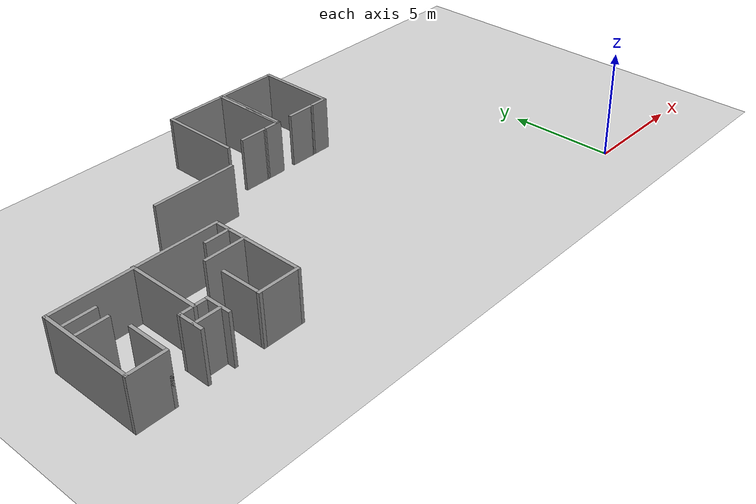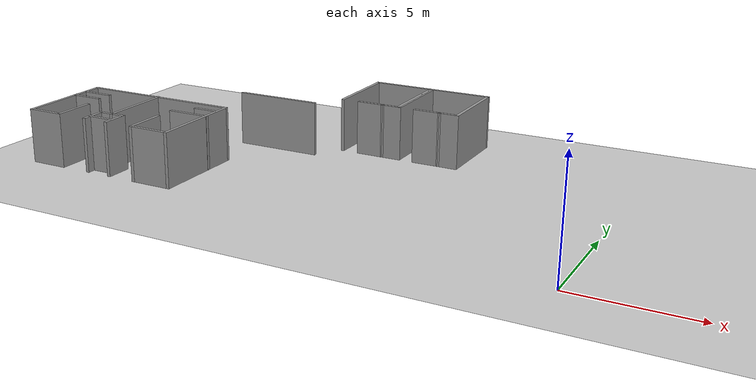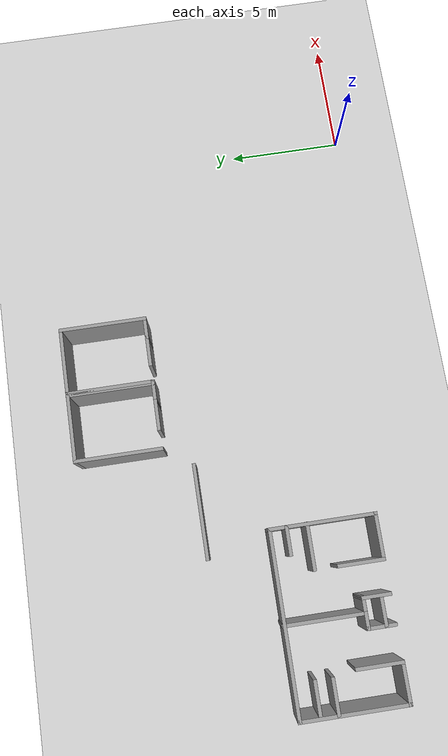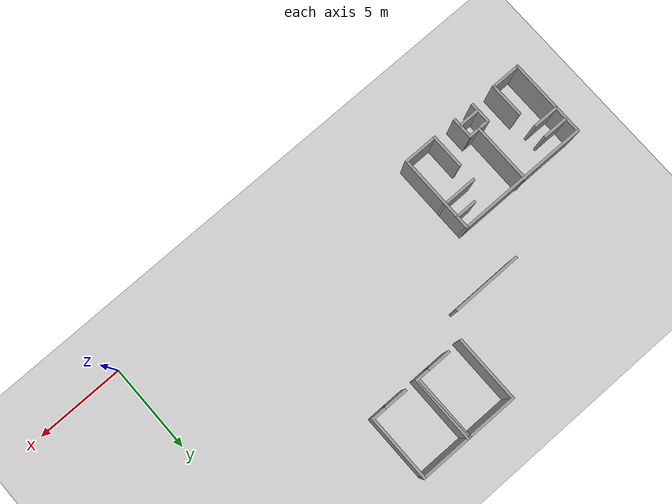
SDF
<sdf version="1.6">
 <world name="default">
  <model name="ground_plane">
   <static>1</static>
   <link name="link">
    <collision name="collision">
     <geometry><plane><normal>0 0 1</normal><size>100 100</size></plane></geometry>
     <surface><friction><ode><mu>100</mu><mu2>50</mu2></ode></friction></surface>
    </collision>
    <visual name="visual">
     <cast_shadows>0</cast_shadows>
     <geometry><plane><normal>0 0 1</normal><size>100 100</size></plane></geometry>
     <material>
      <script><uri>file://media/materials/scripts/gazebo.material</uri><name>Gazebo/Grey</name></script>
     </material>
    </visual>
   </link>
  </model>
  <model name="201/202">
   <pose>-21.3391 4.00533 0 0 -0 0</pose>
   <link name="Wall_10">
    <collision name="Wall_10_Collision">
     <geometry><box><size>7.62002 0.15 2.5</size></box></geometry>
     <pose>0 0 1.25 0 -0 0</pose>
    </collision>
    <visual name="Wall_10_Visual">
     <pose>0 0 1.25 0 -0 0</pose>
     <geometry><box><size>7.62002 0.15 2.5</size></box></geometry>
     <material>
      <script><uri>file://media/materials/scripts/gazebo.material</uri><name>Gazebo/Grey</name></script>
      <ambient>1 1 1 1</ambient>
     </material>
     <meta><layer>0</layer></meta>
    </visual>
    <pose>-0.004655 2.1906 0 0 -0 3.14159</pose>
   </link>
   <link name="Wall_11">
    <collision name="Wall_11_Collision">
     <geometry><box><size>4.572 0.15 2.5</size></box></geometry>
     <pose>0 0 1.25 0 -0 0</pose>
    </collision>
    <visual name="Wall_11_Visual">
     <pose>0 0 1.25 0 -0 0</pose>
     <geometry><box><size>4.572 0.15 2.5</size></box></geometry>
     <material>
      <script><uri>file://media/materials/scripts/gazebo.material</uri><name>Gazebo/Grey</name></script>
      <ambient>1 1 1 1</ambient>
     </material>
     <meta><layer>0</layer></meta>
    </visual>
    <pose>-3.73965 -0.020398 0 0 -0 -1.5708</pose>
   </link>
   <link name="Wall_13">
    <collision name="Wall_13_Collision">
     <geometry><box><size>2 0.15 2.5</size></box></geometry>
     <pose>0 0 1.25 0 -0 0</pose>
    </collision>
    <visual name="Wall_13_Visual">
     <pose>0 0 1.25 0 -0 0</pose>
     <geometry><box><size>2 0.15 2.5</size></box></geometry>
     <material>
      <script><uri>file://media/materials/scripts/gazebo.material</uri><name>Gazebo/Grey</name></script>
      <ambient>1 1 1 1</ambient>
     </material>
     <meta><layer>0</layer></meta>
    </visual>
    <pose>2.80535 -2.23095 0 0 -0 3.14159</pose>
   </link>
   <link name="Wall_14">
    <collision name="Wall_14_Collision">
     <geometry><box><size>2 0.15 2.5</size></box></geometry>
     <pose>0 0 1.25 0 -0 0</pose>
    </collision>
    <visual name="Wall_14_Visual">
     <pose>0 0 1.25 0 -0 0</pose>
     <geometry><box><size>2 0.15 2.5</size></box></geometry>
     <material>
      <script><uri>file://media/materials/scripts/gazebo.material</uri><name>Gazebo/Grey</name></script>
      <ambient>1 1 1 1</ambient>
     </material>
     <meta><layer>0</layer></meta>
    </visual>
    <pose>1.88035 -1.30595 0 0 -0 1.5708</pose>
   </link>
   <link name="Wall_16">
    <collision name="Wall_16_Collision">
     <geometry><box><size>3.5 0.15 2.5</size></box></geometry>
     <pose>0 0 1.25 0 -0 0</pose>
    </collision>
    <visual name="Wall_16_Visual">
     <pose>0 0 1.25 0 -0 0</pose>
     <geometry><box><size>3.5 0.15 2.5</size></box></geometry>
     <material>
      <script><uri>file://media/materials/scripts/gazebo.material</uri><name>Gazebo/Grey</name></script>
      <ambient>1 1 1 1</ambient>
     </material>
     <meta><layer>0</layer></meta>
    </visual>
    <pose>-0.091763 0.556398 0 0 -0 -1.5708</pose>
   </link>
   <link name="Wall_17">
    <collision name="Wall_17_Collision">
     <geometry><box><size>0.75 0.15 2.5</size></box></geometry>
     <pose>0 0 1.25 0 -0 0</pose>
    </collision>
    <visual name="Wall_17_Visual">
     <pose>0 0 1.25 0 -0 0</pose>
     <geometry><box><size>0.75 0.15 2.5</size></box></geometry>
     <material>
      <script><uri>file://media/materials/scripts/gazebo.material</uri><name>Gazebo/Grey</name></script>
      <ambient>1 1 1 1</ambient>
     </material>
     <meta><layer>0</layer></meta>
    </visual>
    <pose>0.208236 -1.1186 0 0 -0 0</pose>
   </link>
   <link name="Wall_18">
    <collision name="Wall_18_Collision">
     <geometry><box><size>1.25 0.15 2.5</size></box></geometry>
     <pose>0 0 1.25 0 -0 0</pose>
    </collision>
    <visual name="Wall_18_Visual">
     <pose>0 0 1.25 0 -0 0</pose>
     <geometry><box><size>1.25 0.15 2.5</size></box></geometry>
     <material>
      <script><uri>file://media/materials/scripts/gazebo.material</uri><name>Gazebo/Grey</name></script>
      <ambient>1 1 1 1</ambient>
     </material>
     <meta><layer>0</layer></meta>
    </visual>
    <pose>0.508237 -1.6686 0 0 -0 -1.5708</pose>
   </link>
   <link name="Wall_20">
    <collision name="Wall_20_Collision">
     <geometry><box><size>0.75 0.15 2.5</size></box></geometry>
     <pose>0 0 1.25 0 -0 0</pose>
    </collision>
    <visual name="Wall_20_Visual">
     <pose>0 0 1.25 0 -0 0</pose>
     <geometry><box><size>0.75 0.15 2.5</size></box></geometry>
     <material>
      <script><uri>file://media/materials/scripts/gazebo.material</uri><name>Gazebo/Grey</name></script>
      <ambient>1 1 1 1</ambient>
     </material>
     <meta><layer>0</layer></meta>
    </visual>
    <pose>-0.391763 -1.1186 0 0 -0 3.14159</pose>
   </link>
   <link name="Wall_21">
    <collision name="Wall_21_Collision">
     <geometry><box><size>1.25 0.15 2.5</size></box></geometry>
     <pose>0 0 1.25 0 -0 0</pose>
    </collision>
    <visual name="Wall_21_Visual">
     <pose>0 0 1.25 0 -0 0</pose>
     <geometry><box><size>1.25 0.15 2.5</size></box></geometry>
     <material>
      <script><uri>file://media/materials/scripts/gazebo.material</uri><name>Gazebo/Grey</name></script>
      <ambient>1 1 1 1</ambient>
     </material>
     <meta><layer>0</layer></meta>
    </visual>
    <pose>-0.691764 -1.6686 0 0 -0 -1.5708</pose>
   </link>
   <link name="Wall_23">
    <collision name="Wall_23_Collision">
     <geometry><box><size>1.75 0.15 2.5</size></box></geometry>
     <pose>0 0 1.25 0 -0 0</pose>
    </collision>
    <visual name="Wall_23_Visual">
     <pose>0 0 1.25 0 -0 0</pose>
     <geometry><box><size>1.75 0.15 2.5</size></box></geometry>
     <material>
      <script><uri>file://media/materials/scripts/gazebo.material</uri><name>Gazebo/Grey</name></script>
      <ambient>1 1 1 1</ambient>
     </material>
     <meta><layer>0</layer></meta>
    </visual>
    <pose>-2.93966 -2.2314 0 0 -0 0</pose>
   </link>
   <link name="Wall_24">
    <collision name="Wall_24_Collision">
     <geometry><box><size>2 0.15 2.5</size></box></geometry>
     <pose>0 0 1.25 0 -0 0</pose>
    </collision>
    <visual name="Wall_24_Visual">
     <pose>0 0 1.25 0 -0 0</pose>
     <geometry><box><size>2 0.15 2.5</size></box></geometry>
     <material>
      <script><uri>file://media/materials/scripts/gazebo.material</uri><name>Gazebo/Grey</name></script>
      <ambient>1 1 1 1</ambient>
     </material>
     <meta><layer>0</layer></meta>
    </visual>
    <pose>-2.13965 -1.3064 0 0 -0 1.5708</pose>
   </link>
   <link name="Wall_28">
    <collision name="Wall_28_Collision">
     <geometry><box><size>1.5 0.15 2.5</size></box></geometry>
     <pose>0 0 1.25 0 -0 0</pose>
    </collision>
    <visual name="Wall_28_Visual">
     <pose>0 0 1.25 0 -0 0</pose>
     <geometry><box><size>1.5 0.15 2.5</size></box></geometry>
     <material>
      <script><uri>file://media/materials/scripts/gazebo.material</uri><name>Gazebo/Grey</name></script>
      <ambient>1 1 1 1</ambient>
     </material>
     <meta><layer>0</layer></meta>
    </visual>
    <pose>-3.01876 1.34811 0 0 -0 0</pose>
   </link>
   <link name="Wall_30">
    <collision name="Wall_30_Collision">
     <geometry><box><size>1.5 0.15 2.5</size></box></geometry>
     <pose>0 0 1.25 0 -0 0</pose>
    </collision>
    <visual name="Wall_30_Visual">
     <pose>0 0 1.25 0 -0 0</pose>
     <geometry><box><size>1.5 0.15 2.5</size></box></geometry>
     <material>
      <script><uri>file://media/materials/scripts/gazebo.material</uri><name>Gazebo/Grey</name></script>
      <ambient>1 1 1 1</ambient>
     </material>
     <meta><layer>0</layer></meta>
    </visual>
    <pose>-3.03023 0.625411 0 0 -0 0</pose>
   </link>
   <link name="Wall_32">
    <collision name="Wall_32_Collision">
     <geometry><box><size>2 0.15 2.5</size></box></geometry>
     <pose>0 0 1.25 0 -0 0</pose>
    </collision>
    <visual name="Wall_32_Visual">
     <pose>0 0 1.25 0 -0 0</pose>
     <geometry><box><size>2 0.15 2.5</size></box></geometry>
     <material>
      <script><uri>file://media/materials/scripts/gazebo.material</uri><name>Gazebo/Grey</name></script>
      <ambient>1 1 1 1</ambient>
     </material>
     <meta><layer>0</layer></meta>
    </visual>
    <pose>2.81466 0.625411 0 0 -0 3.14159</pose>
   </link>
   <link name="Wall_34">
    <collision name="Wall_34_Collision">
     <geometry><box><size>1.25 0.15 2.5</size></box></geometry>
     <pose>0 0 1.25 0 -0 0</pose>
    </collision>
    <visual name="Wall_34_Visual">
     <pose>0 0 1.25 0 -0 0</pose>
     <geometry><box><size>1.25 0.15 2.5</size></box></geometry>
     <material>
      <script><uri>file://media/materials/scripts/gazebo.material</uri><name>Gazebo/Grey</name></script>
      <ambient>1 1 1 1</ambient>
     </material>
     <meta><layer>0</layer></meta>
    </visual>
    <pose>3.16672 1.48576 0 0 -0 3.14159</pose>
   </link>
   <link name="Wall_36">
    <collision name="Wall_36_Collision">
     <geometry><box><size>1.25 0.15 2.5</size></box></geometry>
     <pose>0 0 1.25 0 -0 0</pose>
    </collision>
    <visual name="Wall_36_Visual">
     <pose>0 0 1.25 0 -0 0</pose>
     <geometry><box><size>1.25 0.15 2.5</size></box></geometry>
     <material>
      <script><uri>file://media/materials/scripts/gazebo.material</uri><name>Gazebo/Grey</name></script>
      <ambient>1 1 1 1</ambient>
     </material>
     <meta><layer>0</layer></meta>
    </visual>
    <pose>-0.138273 -1.8524 0 0 -0 0</pose>
   </link>
   <link name="Wall_9">
    <collision name="Wall_9_Collision">
     <geometry><box><size>4.572 0.15 2.5</size></box></geometry>
     <pose>0 0 1.25 0 -0 0</pose>
    </collision>
    <visual name="Wall_9_Visual">
     <pose>0 0 1.25 0 -0 0</pose>
     <geometry><box><size>4.572 0.15 2.5</size></box></geometry>
     <material>
      <script><uri>file://media/materials/scripts/gazebo.material</uri><name>Gazebo/Grey</name></script>
      <ambient>1 1 1 1</ambient>
     </material>
     <meta><layer>0</layer></meta>
    </visual>
    <pose>3.73035 -0.020175 0 0 -0 1.5708</pose>
   </link>
   <static>1</static>
  </model>
  <model name="313-325_12">
   <link name="Wall_16">
    <pose>-1.44915 7.1e-05 0 0 0 -1.57088</pose>
    <visual name="Wall_16_Visual">
     <pose>0 0 1.25 0 -0 0</pose>
     <geometry><box><size>3.81 0.15 2.5</size></box></geometry>
     <material>
      <script><uri>file://media/materials/scripts/gazebo.material</uri><name>Gazebo/Grey</name></script>
      <ambient>1 1 1 1</ambient>
      <shader type="pixel"/>
     </material>
     <meta><layer>0</layer></meta>
    </visual>
    <collision name="Wall_16_Collision">
     <pose>0 0 1.25 0 -0 0</pose>
     <geometry><box><size>3.81 0.15 2.5</size></box></geometry>
     <surface>
      <friction>
       <ode><mu>1</mu><mu2>1</mu2><fdir1>0 0 0</fdir1><slip1>0</slip1><slip2>0</slip2></ode>
       <torsional>
        <coefficient>1</coefficient>
        <patch_radius>0</patch_radius>
        <surface_radius>0</surface_radius>
        <use_patch_radius>1</use_patch_radius>
        <ode><slip>0</slip></ode>
       </torsional>
      </friction>
      <bounce><restitution_coefficient>0</restitution_coefficient><threshold>1e+06</threshold></bounce>
      <contact>
       <collide_without_contact>0</collide_without_contact>
       <collide_without_contact_bitmask>1</collide_without_contact_bitmask>
       <collide_bitmask>1</collide_bitmask>
       <ode>
        <soft_cfm>0</soft_cfm>
        <soft_erp>0.2</soft_erp>
        <kp>1e+13</kp>
        <kd>1</kd>
        <max_vel>0.01</max_vel>
        <min_depth>0</min_depth>
       </ode>
       <bullet>
        <split_impulse>1</split_impulse>
        <split_impulse_penetration_threshold>-0.01</split_impulse_penetration_threshold>
        <soft_cfm>0</soft_cfm>
        <soft_erp>0.2</soft_erp>
        <kp>1e+13</kp>
        <kd>1</kd>
       </bullet>
      </contact>
     </surface>
    </collision>
   </link>
   <link name="Wall_18">
    <pose>1.449 -6.1e-05 0 0 -0 1.5708</pose>
    <visual name="Wall_18_Visual">
     <pose>0 0 1.25 0 -0 0</pose>
     <geometry><box><size>3.80974 0.15 2.5</size></box></geometry>
     <material>
      <script><uri>file://media/materials/scripts/gazebo.material</uri><name>Gazebo/Grey</name></script>
      <ambient>1 1 1 1</ambient>
      <shader type="pixel"/>
     </material>
     <meta><layer>0</layer></meta>
    </visual>
    <collision name="Wall_18_Collision">
     <pose>0 0 1.25 0 -0 0</pose>
     <geometry><box><size>3.80974 0.15 2.5</size></box></geometry>
     <surface>
      <friction>
       <ode><mu>1</mu><mu2>1</mu2><fdir1>0 0 0</fdir1><slip1>0</slip1><slip2>0</slip2></ode>
       <torsional>
        <coefficient>1</coefficient>
        <patch_radius>0</patch_radius>
        <surface_radius>0</surface_radius>
        <use_patch_radius>1</use_patch_radius>
        <ode><slip>0</slip></ode>
       </torsional>
      </friction>
      <bounce><restitution_coefficient>0</restitution_coefficient><threshold>1e+06</threshold></bounce>
      <contact>
       <collide_without_contact>0</collide_without_contact>
       <collide_without_contact_bitmask>1</collide_without_contact_bitmask>
       <collide_bitmask>1</collide_bitmask>
       <ode>
        <soft_cfm>0</soft_cfm>
        <soft_erp>0.2</soft_erp>
        <kp>1e+13</kp>
        <kd>1</kd>
        <max_vel>0.01</max_vel>
        <min_depth>0</min_depth>
       </ode>
       <bullet>
        <split_impulse>1</split_impulse>
        <split_impulse_penetration_threshold>-0.01</split_impulse_penetration_threshold>
        <soft_cfm>0</soft_cfm>
        <soft_erp>0.2</soft_erp>
        <kp>1e+13</kp>
        <kd>1</kd>
       </bullet>
      </contact>
     </surface>
    </collision>
   </link>
   <link name="Wall_19">
    <pose>2e-06 1.82994 0 0 -0 3.14159</pose>
    <visual name="Wall_19_Visual">
     <pose>0 0 1.25 0 -0 0</pose>
     <geometry><box><size>3.04862 0.15 2.5</size></box></geometry>
     <material>
      <script><uri>file://media/materials/scripts/gazebo.material</uri><name>Gazebo/Grey</name></script>
      <ambient>1 1 1 1</ambient>
      <shader type="pixel"/>
     </material>
     <meta><layer>0</layer></meta>
    </visual>
    <collision name="Wall_19_Collision">
     <pose>0 0 1.25 0 -0 0</pose>
     <geometry><box><size>3.04862 0.15 2.5</size></box></geometry>
     <surface>
      <friction>
       <ode><mu>1</mu><mu2>1</mu2><fdir1>0 0 0</fdir1><slip1>0</slip1><slip2>0</slip2></ode>
       <torsional>
        <coefficient>1</coefficient>
        <patch_radius>0</patch_radius>
        <surface_radius>0</surface_radius>
        <use_patch_radius>1</use_patch_radius>
        <ode><slip>0</slip></ode>
       </torsional>
      </friction>
      <bounce><restitution_coefficient>0</restitution_coefficient><threshold>1e+06</threshold></bounce>
      <contact>
       <collide_without_contact>0</collide_without_contact>
       <collide_without_contact_bitmask>1</collide_without_contact_bitmask>
       <collide_bitmask>1</collide_bitmask>
       <ode>
        <soft_cfm>0</soft_cfm>
        <soft_erp>0.2</soft_erp>
        <kp>1e+13</kp>
        <kd>1</kd>
        <max_vel>0.01</max_vel>
        <min_depth>0</min_depth>
       </ode>
       <bullet>
        <split_impulse>1</split_impulse>
        <split_impulse_penetration_threshold>-0.01</split_impulse_penetration_threshold>
        <soft_cfm>0</soft_cfm>
        <soft_erp>0.2</soft_erp>
        <kp>1e+13</kp>
        <kd>1</kd>
       </bullet>
      </contact>
     </surface>
    </collision>
   </link>
   <link name="Wall_22">
    <pose>-0.000153 -1.82993 0 0 0 -0.00022</pose>
    <visual name="Wall_22_Visual">
     <pose>0 0 1.25 0 -0 0</pose>
     <geometry><box><size>1.34831 0.15 2.5</size></box></geometry>
     <material>
      <script><uri>file://media/materials/scripts/gazebo.material</uri><name>Gazebo/Grey</name></script>
      <ambient>1 1 1 1</ambient>
      <shader type="pixel"/>
     </material>
     <meta><layer>0</layer></meta>
    </visual>
    <collision name="Wall_22_Collision">
     <pose>0 0 1.25 0 -0 0</pose>
     <geometry><box><size>1.34831 0.15 2.5</size></box></geometry>
     <surface>
      <friction>
       <ode><mu>1</mu><mu2>1</mu2><fdir1>0 0 0</fdir1><slip1>0</slip1><slip2>0</slip2></ode>
       <torsional>
        <coefficient>1</coefficient>
        <patch_radius>0</patch_radius>
        <surface_radius>0</surface_radius>
        <use_patch_radius>1</use_patch_radius>
        <ode><slip>0</slip></ode>
       </torsional>
      </friction>
      <bounce><restitution_coefficient>0</restitution_coefficient><threshold>1e+06</threshold></bounce>
      <contact>
       <collide_without_contact>0</collide_without_contact>
       <collide_without_contact_bitmask>1</collide_without_contact_bitmask>
       <collide_bitmask>1</collide_bitmask>
       <ode>
        <soft_cfm>0</soft_cfm>
        <soft_erp>0.2</soft_erp>
        <kp>1e+13</kp>
        <kd>1</kd>
        <max_vel>0.01</max_vel>
        <min_depth>0</min_depth>
       </ode>
       <bullet>
        <split_impulse>1</split_impulse>
        <split_impulse_penetration_threshold>-0.01</split_impulse_penetration_threshold>
        <soft_cfm>0</soft_cfm>
        <soft_erp>0.2</soft_erp>
        <kp>1e+13</kp>
        <kd>1</kd>
       </bullet>
      </contact>
     </surface>
    </collision>
   </link>
   <link name="Wall_23">
    <pose>1.024 -1.83006 0 0 -0 0</pose>
    <visual name="Wall_23_Visual">
     <pose>0 0 1.25 0 -0 0</pose>
     <geometry><box><size>1 0.15 2.5</size></box></geometry>
     <material>
      <script><uri>file://media/materials/scripts/gazebo.material</uri><name>Gazebo/Grey</name></script>
      <ambient>1 1 1 1</ambient>
      <shader type="pixel"/>
     </material>
     <meta><layer>0</layer></meta>
    </visual>
    <collision name="Wall_23_Collision">
     <pose>0 0 1.25 0 -0 0</pose>
     <geometry><box><size>1 0.15 2.5</size></box></geometry>
     <surface>
      <friction>
       <ode><mu>1</mu><mu2>1</mu2><fdir1>0 0 0</fdir1><slip1>0</slip1><slip2>0</slip2></ode>
       <torsional>
        <coefficient>1</coefficient>
        <patch_radius>0</patch_radius>
        <surface_radius>0</surface_radius>
        <use_patch_radius>1</use_patch_radius>
        <ode><slip>0</slip></ode>
       </torsional>
      </friction>
      <bounce><restitution_coefficient>0</restitution_coefficient><threshold>1e+06</threshold></bounce>
      <contact>
       <collide_without_contact>0</collide_without_contact>
       <collide_without_contact_bitmask>1</collide_without_contact_bitmask>
       <collide_bitmask>1</collide_bitmask>
       <ode>
        <soft_cfm>0</soft_cfm>
        <soft_erp>0.2</soft_erp>
        <kp>1e+13</kp>
        <kd>1</kd>
        <max_vel>0.01</max_vel>
        <min_depth>0</min_depth>
       </ode>
       <bullet>
        <split_impulse>1</split_impulse>
        <split_impulse_penetration_threshold>-0.01</split_impulse_penetration_threshold>
        <soft_cfm>0</soft_cfm>
        <soft_erp>0.2</soft_erp>
        <kp>1e+13</kp>
        <kd>1</kd>
       </bullet>
      </contact>
     </surface>
    </collision>
   </link>
   <static>1</static>
   <pose>-9.39526 11.9735 0 0 -0 0</pose>
  </model>
  <model name="313-325_13">
   <link name="Wall_16">
    <pose>-1.44915 7.1e-05 0 0 0 -1.57088</pose>
    <visual name="Wall_16_Visual">
     <pose>0 0 1.25 0 -0 0</pose>
     <geometry><box><size>3.81 0.15 2.5</size></box></geometry>
     <material>
      <script><uri>file://media/materials/scripts/gazebo.material</uri><name>Gazebo/Grey</name></script>
      <ambient>1 1 1 1</ambient>
      <shader type="pixel"/>
     </material>
     <meta><layer>0</layer></meta>
    </visual>
    <collision name="Wall_16_Collision">
     <pose>0 0 1.25 0 -0 0</pose>
     <geometry><box><size>3.81 0.15 2.5</size></box></geometry>
     <surface>
      <friction>
       <ode><mu>1</mu><mu2>1</mu2><fdir1>0 0 0</fdir1><slip1>0</slip1><slip2>0</slip2></ode>
       <torsional>
        <coefficient>1</coefficient>
        <patch_radius>0</patch_radius>
        <surface_radius>0</surface_radius>
        <use_patch_radius>1</use_patch_radius>
        <ode><slip>0</slip></ode>
       </torsional>
      </friction>
      <bounce><restitution_coefficient>0</restitution_coefficient><threshold>1e+06</threshold></bounce>
      <contact>
       <collide_without_contact>0</collide_without_contact>
       <collide_without_contact_bitmask>1</collide_without_contact_bitmask>
       <collide_bitmask>1</collide_bitmask>
       <ode>
        <soft_cfm>0</soft_cfm>
        <soft_erp>0.2</soft_erp>
        <kp>1e+13</kp>
        <kd>1</kd>
        <max_vel>0.01</max_vel>
        <min_depth>0</min_depth>
       </ode>
       <bullet>
        <split_impulse>1</split_impulse>
        <split_impulse_penetration_threshold>-0.01</split_impulse_penetration_threshold>
        <soft_cfm>0</soft_cfm>
        <soft_erp>0.2</soft_erp>
        <kp>1e+13</kp>
        <kd>1</kd>
       </bullet>
      </contact>
     </surface>
    </collision>
   </link>
   <link name="Wall_18">
    <pose>1.449 -6.1e-05 0 0 -0 1.5708</pose>
    <visual name="Wall_18_Visual">
     <pose>0 0 1.25 0 -0 0</pose>
     <geometry><box><size>3.80974 0.15 2.5</size></box></geometry>
     <material>
      <script><uri>file://media/materials/scripts/gazebo.material</uri><name>Gazebo/Grey</name></script>
      <ambient>1 1 1 1</ambient>
      <shader type="pixel"/>
     </material>
     <meta><layer>0</layer></meta>
    </visual>
    <collision name="Wall_18_Collision">
     <pose>0 0 1.25 0 -0 0</pose>
     <geometry><box><size>3.80974 0.15 2.5</size></box></geometry>
     <surface>
      <friction>
       <ode><mu>1</mu><mu2>1</mu2><fdir1>0 0 0</fdir1><slip1>0</slip1><slip2>0</slip2></ode>
       <torsional>
        <coefficient>1</coefficient>
        <patch_radius>0</patch_radius>
        <surface_radius>0</surface_radius>
        <use_patch_radius>1</use_patch_radius>
        <ode><slip>0</slip></ode>
       </torsional>
      </friction>
      <bounce><restitution_coefficient>0</restitution_coefficient><threshold>1e+06</threshold></bounce>
      <contact>
       <collide_without_contact>0</collide_without_contact>
       <collide_without_contact_bitmask>1</collide_without_contact_bitmask>
       <collide_bitmask>1</collide_bitmask>
       <ode>
        <soft_cfm>0</soft_cfm>
        <soft_erp>0.2</soft_erp>
        <kp>1e+13</kp>
        <kd>1</kd>
        <max_vel>0.01</max_vel>
        <min_depth>0</min_depth>
       </ode>
       <bullet>
        <split_impulse>1</split_impulse>
        <split_impulse_penetration_threshold>-0.01</split_impulse_penetration_threshold>
        <soft_cfm>0</soft_cfm>
        <soft_erp>0.2</soft_erp>
        <kp>1e+13</kp>
        <kd>1</kd>
       </bullet>
      </contact>
     </surface>
    </collision>
   </link>
   <link name="Wall_19">
    <pose>2e-06 1.82994 0 0 -0 3.14159</pose>
    <visual name="Wall_19_Visual">
     <pose>0 0 1.25 0 -0 0</pose>
     <geometry><box><size>3.04862 0.15 2.5</size></box></geometry>
     <material>
      <script><uri>file://media/materials/scripts/gazebo.material</uri><name>Gazebo/Grey</name></script>
      <ambient>1 1 1 1</ambient>
      <shader type="pixel"/>
     </material>
     <meta><layer>0</layer></meta>
    </visual>
    <collision name="Wall_19_Collision">
     <pose>0 0 1.25 0 -0 0</pose>
     <geometry><box><size>3.04862 0.15 2.5</size></box></geometry>
     <surface>
      <friction>
       <ode><mu>1</mu><mu2>1</mu2><fdir1>0 0 0</fdir1><slip1>0</slip1><slip2>0</slip2></ode>
       <torsional>
        <coefficient>1</coefficient>
        <patch_radius>0</patch_radius>
        <surface_radius>0</surface_radius>
        <use_patch_radius>1</use_patch_radius>
        <ode><slip>0</slip></ode>
       </torsional>
      </friction>
      <bounce><restitution_coefficient>0</restitution_coefficient><threshold>1e+06</threshold></bounce>
      <contact>
       <collide_without_contact>0</collide_without_contact>
       <collide_without_contact_bitmask>1</collide_without_contact_bitmask>
       <collide_bitmask>1</collide_bitmask>
       <ode>
        <soft_cfm>0</soft_cfm>
        <soft_erp>0.2</soft_erp>
        <kp>1e+13</kp>
        <kd>1</kd>
        <max_vel>0.01</max_vel>
        <min_depth>0</min_depth>
       </ode>
       <bullet>
        <split_impulse>1</split_impulse>
        <split_impulse_penetration_threshold>-0.01</split_impulse_penetration_threshold>
        <soft_cfm>0</soft_cfm>
        <soft_erp>0.2</soft_erp>
        <kp>1e+13</kp>
        <kd>1</kd>
       </bullet>
      </contact>
     </surface>
    </collision>
   </link>
   <link name="Wall_22">
    <pose>-0.000153 -1.82993 0 0 0 -0.00022</pose>
    <visual name="Wall_22_Visual">
     <pose>0 0 1.25 0 -0 0</pose>
     <geometry><box><size>1.34831 0.15 2.5</size></box></geometry>
     <material>
      <script><uri>file://media/materials/scripts/gazebo.material</uri><name>Gazebo/Grey</name></script>
      <ambient>1 1 1 1</ambient>
      <shader type="pixel"/>
     </material>
     <meta><layer>0</layer></meta>
    </visual>
    <collision name="Wall_22_Collision">
     <pose>0 0 1.25 0 -0 0</pose>
     <geometry><box><size>1.34831 0.15 2.5</size></box></geometry>
     <surface>
      <friction>
       <ode><mu>1</mu><mu2>1</mu2><fdir1>0 0 0</fdir1><slip1>0</slip1><slip2>0</slip2></ode>
       <torsional>
        <coefficient>1</coefficient>
        <patch_radius>0</patch_radius>
        <surface_radius>0</surface_radius>
        <use_patch_radius>1</use_patch_radius>
        <ode><slip>0</slip></ode>
       </torsional>
      </friction>
      <bounce><restitution_coefficient>0</restitution_coefficient><threshold>1e+06</threshold></bounce>
      <contact>
       <collide_without_contact>0</collide_without_contact>
       <collide_without_contact_bitmask>1</collide_without_contact_bitmask>
       <collide_bitmask>1</collide_bitmask>
       <ode>
        <soft_cfm>0</soft_cfm>
        <soft_erp>0.2</soft_erp>
        <kp>1e+13</kp>
        <kd>1</kd>
        <max_vel>0.01</max_vel>
        <min_depth>0</min_depth>
       </ode>
       <bullet>
        <split_impulse>1</split_impulse>
        <split_impulse_penetration_threshold>-0.01</split_impulse_penetration_threshold>
        <soft_cfm>0</soft_cfm>
        <soft_erp>0.2</soft_erp>
        <kp>1e+13</kp>
        <kd>1</kd>
       </bullet>
      </contact>
     </surface>
    </collision>
   </link>
   <link name="Wall_23">
    <pose>1.024 -1.83006 0 0 -0 0</pose>
    <visual name="Wall_23_Visual">
     <pose>0 0 1.25 0 -0 0</pose>
     <geometry><box><size>1 0.15 2.5</size></box></geometry>
     <material>
      <script><uri>file://media/materials/scripts/gazebo.material</uri><name>Gazebo/Grey</name></script>
      <ambient>1 1 1 1</ambient>
      <shader type="pixel"/>
     </material>
     <meta><layer>0</layer></meta>
    </visual>
    <collision name="Wall_23_Collision">
     <pose>0 0 1.25 0 -0 0</pose>
     <geometry><box><size>1 0.15 2.5</size></box></geometry>
     <surface>
      <friction>
       <ode><mu>1</mu><mu2>1</mu2><fdir1>0 0 0</fdir1><slip1>0</slip1><slip2>0</slip2></ode>
       <torsional>
        <coefficient>1</coefficient>
        <patch_radius>0</patch_radius>
        <surface_radius>0</surface_radius>
        <use_patch_radius>1</use_patch_radius>
        <ode><slip>0</slip></ode>
       </torsional>
      </friction>
      <bounce><restitution_coefficient>0</restitution_coefficient><threshold>1e+06</threshold></bounce>
      <contact>
       <collide_without_contact>0</collide_without_contact>
       <collide_without_contact_bitmask>1</collide_without_contact_bitmask>
       <collide_bitmask>1</collide_bitmask>
       <ode>
        <soft_cfm>0</soft_cfm>
        <soft_erp>0.2</soft_erp>
        <kp>1e+13</kp>
        <kd>1</kd>
        <max_vel>0.01</max_vel>
        <min_depth>0</min_depth>
       </ode>
       <bullet>
        <split_impulse>1</split_impulse>
        <split_impulse_penetration_threshold>-0.01</split_impulse_penetration_threshold>
        <soft_cfm>0</soft_cfm>
        <soft_erp>0.2</soft_erp>
        <kp>1e+13</kp>
        <kd>1</kd>
       </bullet>
      </contact>
     </surface>
    </collision>
   </link>
   <static>1</static>
   <pose>-12.2054 11.9718 0 0 -0 0</pose>
  </model>
  <model name="4m_wall">
   <link name="Wall_0">
    <pose>0 0 0 0 -0 -3.13659</pose>
    <visual name="Wall_0_Visual">
     <pose>0 0 1.25 0 -0 0</pose>
     <geometry><box><size>4 0.15 2.5</size></box></geometry>
     <material>
      <script><uri>file://media/materials/scripts/gazebo.material</uri><name>Gazebo/Grey</name></script>
      <ambient>1 1 1 1</ambient>
      <shader type="pixel"/>
     </material>
     <meta><layer>0</layer></meta>
    </visual>
    <collision name="Wall_0_Collision">
     <pose>0 0 1.25 0 -0 0</pose>
     <geometry><box><size>4 0.15 2.5</size></box></geometry>
     <surface>
      <friction>
       <ode><mu>1</mu><mu2>1</mu2><fdir1>0 0 0</fdir1><slip1>0</slip1><slip2>0</slip2></ode>
       <torsional>
        <coefficient>1</coefficient>
        <patch_radius>0</patch_radius>
        <surface_radius>0</surface_radius>
        <use_patch_radius>1</use_patch_radius>
        <ode><slip>0</slip></ode>
       </torsional>
      </friction>
      <bounce><restitution_coefficient>0</restitution_coefficient><threshold>1e+06</threshold></bounce>
      <contact>
       <collide_without_contact>0</collide_without_contact>
       <collide_without_contact_bitmask>1</collide_without_contact_bitmask>
       <collide_bitmask>1</collide_bitmask>
       <ode>
        <soft_cfm>0</soft_cfm>
        <soft_erp>0.2</soft_erp>
        <kp>1e+13</kp>
        <kd>1</kd>
        <max_vel>0.01</max_vel>
        <min_depth>0</min_depth>
       </ode>
       <bullet>
        <split_impulse>1</split_impulse>
        <split_impulse_penetration_threshold>-0.01</split_impulse_penetration_threshold>
        <soft_cfm>0</soft_cfm>
        <soft_erp>0.2</soft_erp>
        <kp>1e+13</kp>
        <kd>1</kd>
       </bullet>
      </contact>
     </surface>
    </collision>
   </link>
   <static>1</static>
   <pose>-16.4662 8.89029 0 0 -0 0</pose>
  </model>
 </world>
</sdf>
